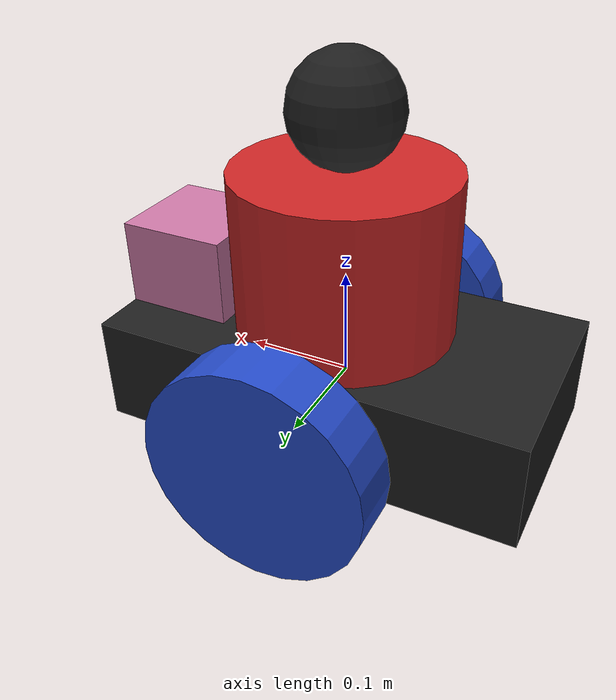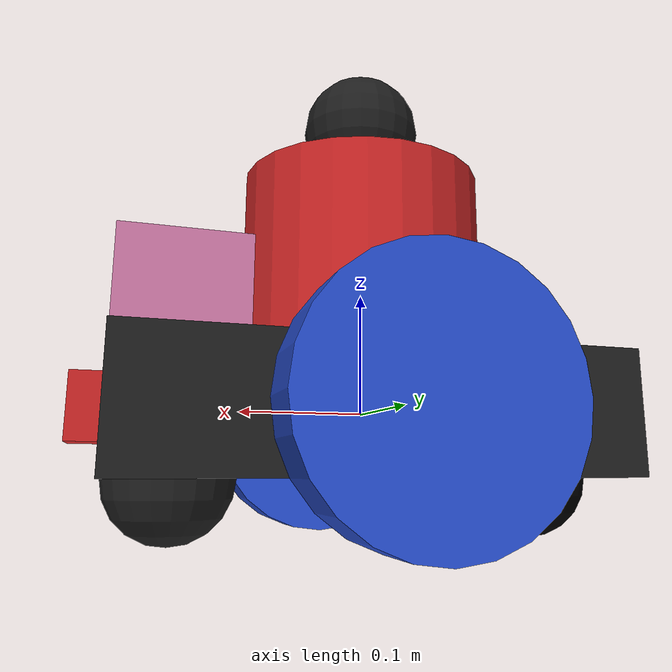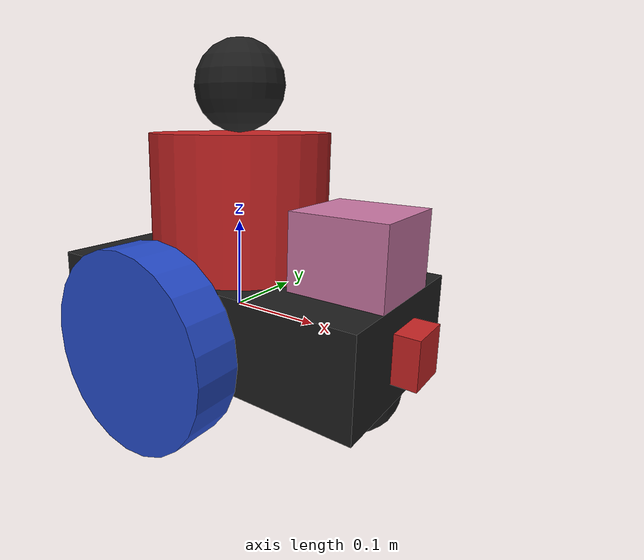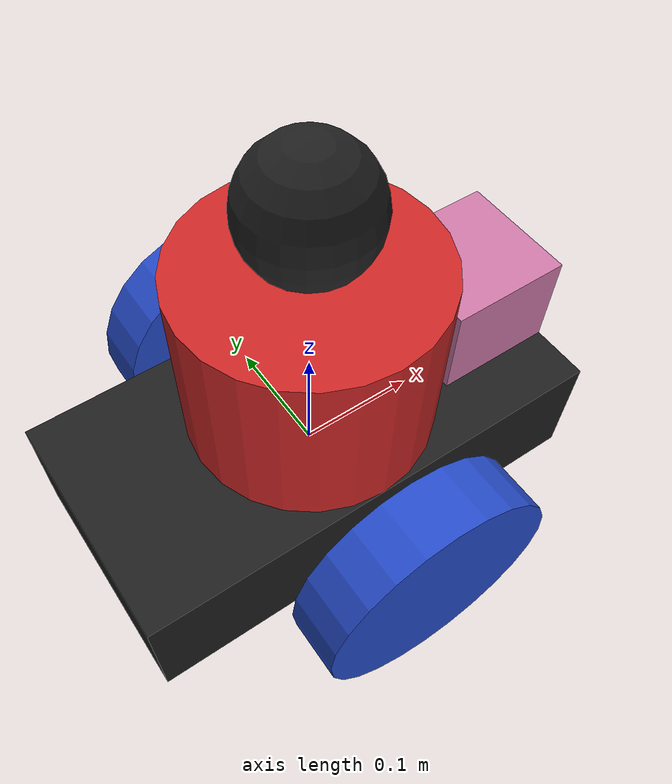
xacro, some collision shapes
<?xml version="1.0"?>
<robot name="r2" xmlns:xacro="http://ros.org/wiki/xacro">
  <xacro:include filename="$(find my_robot)/urdf/my_robot.gazebo"/>

  <link name="base">
    <visual>
      <geometry>
        <cylinder radius="0.1" length="0.2"/>
      </geometry>
    </visual>
    <collision>
      <geometry>
        <cylinder radius="0.1" length="0.2"/>
      </geometry>
    </collision>
    <inertial>
      <mass value="5"/>
      <inertia
          ixx="1.0" ixy="0" ixz="0"
          iyy="1.0" iyz="0"
          izz="1.0"/>
    </inertial>
  </link>

  <joint name="chassis_base" type="fixed">
    <parent link="chassis"/>
    <child link="base"/>
    <origin xyz="0 0 .1"/>
  </joint>

<link name="robot_footprint"></link>

  <joint name="robot_footprint_joint" type="fixed">
    <origin xyz="0 0 0" rpy="0 0 0" />
    <parent link="robot_footprint"/>
    <child link="chassis" />
  </joint>

  <link name='chassis'>
    <pose>0 0 0.1 0 0 0</pose>

    <inertial>
      <mass value="15.0"/>
      <origin xyz="0.0 0 0" rpy=" 0 0 0"/>
      <inertia
          ixx="0.1" ixy="0" ixz="0"
          iyy="0.1" iyz="0"
          izz="0.1"
      />
    </inertial>

    <collision name='collision'>
      <origin xyz="0 0 0" rpy=" 0 0 0"/>
      <geometry>
        <box size=".4 .2 .1"/>
      </geometry>
    </collision>

    <visual name='chassis_visual'>
      <origin xyz="0 0 0" rpy=" 0 0 0"/>
      <geometry>
        <box size=".4 .2 .1"/>
      </geometry>
    </visual>

    <collision name='back_caster_collision'>
      <origin xyz="-0.15 0 -0.05" rpy=" 0 0 0"/>
      <geometry>
        <sphere radius="0.0499"/>
      </geometry>
    </collision>

    <visual name='back_caster_visual'>
      <origin xyz="-0.15 0 -0.05" rpy=" 0 0 0"/>
      <geometry>
        <sphere radius="0.05"/>
      </geometry>
      <material name="black"/>
    </visual>

    <collision name='front_caster_collision'>
      <origin xyz="0.15 0 -0.05" rpy=" 0 0 0"/>
      <geometry>
        <sphere radius="0.0499"/>
      </geometry>
    </collision>

    <visual name='front_caster_visual'>
      <origin xyz="0.15 0 -0.05" rpy=" 0 0 0"/>
      <geometry>
        <sphere radius="0.05"/>
      </geometry>
    </visual>

  </link>

  <link name="left_wheel">
    <inertial>
      <mass value="5.0"/>
      <origin xyz="0 0 0" rpy="0 1.5707 1.5707"/>
      <inertia
          ixx="0.1" ixy="0" ixz="0"
          iyy="0.1" iyz="0"
          izz="0.1"
      />
    </inertial>

    <collision name='left_wheel_collision'>
      <origin xyz="0 0 0" rpy="0 1.5707 1.5707"/>
      <geometry>
        <cylinder radius="0.1" length="0.05" />
      </geometry>
    </collision>

    <visual name='left_wheel_visual'>
      <origin xyz="0 0 0" rpy="0 1.5707 1.5707"/>
      <geometry>
        <cylinder radius="0.1" length="0.05"/>
      </geometry>
    </visual>
  </link>

  <joint type="continuous" name="left_wheel_hinge">
    <origin xyz="0 0.15 0" rpy="0 0 0"/>
    <child link="left_wheel"/>
    <parent link="chassis"/>
    <axis xyz="0 1 0" rpy="0 0 0"/>
    <limit effort="10000" velocity="1000"/>
    <dynamics damping="1.0" friction="1.0"/>
  </joint>

  <link name="right_wheel">
    <inertial>
      <mass value="5.0"/>
      <origin xyz="0 0 0" rpy="0 1.5707 1.5707"/>
      <inertia
          ixx="0.1" ixy="0" ixz="0"
          iyy="0.1" iyz="0"
          izz="0.1"
      />
    </inertial>

    <collision name='right_wheel_collision'>
      <origin xyz="0 0 0" rpy="0 1.5707 1.5707"/>
      <geometry>
        <cylinder radius="0.1" length="0.05"/>
      </geometry>
    </collision>

    <visual name='right_wheel_visual'>
      <origin xyz="0 0 0" rpy="0 1.5707 1.5707"/>
      <geometry>
        <cylinder radius="0.1" length="0.05"/>
      </geometry>
    </visual>
  </link>

  <joint type="continuous" name="right_wheel_hinge">
    <origin xyz="0 -0.15 0" rpy="0 0 0"/>
    <child link="right_wheel"/>
    <parent link="chassis"/>
    <axis xyz="0 1 0" rpy="0 0 0"/>
    <limit effort="10000" velocity="1000"/>
    <dynamics damping="1.0" friction="1.0"/>
  </joint>

  <link name="camera">
    <inertial>
      <mass value="0.1"/>
      <origin xyz="0 0 0" rpy="0 0 0"/>
      <box_inertia m="0.1" x="0.05" y="0.05" z="0.05"/>
      <inertia
          ixx="1e-6" ixy="0" ixz="0"
          iyy="1e-6" iyz="0"
          izz="1e-6"
      />
    </inertial>

    <visual name='camera_visual'>
      <origin xyz="0 0 0" rpy="0 0 0"/>
      <geometry>
        <box size="0.05 0.05 0.05" />
      </geometry>
    </visual>

    <collision name='camera_collision'>
      <origin xyz="0 0 0" rpy="0 0 0"/>
      <geometry>
        <box size="0.05 0.05 0.05"/>
      </geometry>
    </collision>
  </link>

  <joint type="fixed" name="camera_joint">
    <origin xyz="0.2 0 0" rpy="0 0 0"/>
    <child link="camera"/>
    <parent link="chassis"/>
    <axis xyz="0 1 0"/>
  </joint>

  <link name="hokuyo">
    <inertial>
      <mass value="1e-5"/>
      <origin xyz="0 0 0" rpy="0 0 0"/>
      <inertia
          ixx="1e-6" ixy="0" ixz="0"
          iyy="1e-6" iyz="0"
          izz="1e-6"
      />
    </inertial>

    <visual name='hokuyo_visual'>
      <origin xyz="0 0 0" rpy="0 0 0"/>
      <geometry>
        <mesh filename="package://my_robot/meshes/hokuyo.dae"/>
      </geometry>
    </visual>

    <collision name='hokuyo_collision'>
      <origin xyz="0 0 0" rpy=" 0 0 0"/>
      <geometry>
        <box size="0.1 0.1 0.1"/>
      </geometry>
    </collision>
  </link>

  <joint type="fixed" name="hokuyo_joint">
    <origin xyz="0.15 0 0.08" rpy="0 0 0"/>
    <child link="hokuyo"/>
    <parent link="chassis"/>
    <axis xyz="0 1 0"/>
  </joint>

  <link name="head">
    <visual>
      <geometry>
        <sphere radius="0.05"/>
      </geometry>
    </visual>
    <collision>
      <geometry>
        <sphere radius="0.05"/>
      </geometry>
    </collision>
    <inertial>
      <mass value="1"/>
      <inertia
          ixx="1.0" ixy="0" ixz="0"
          iyy="1.0" iyz="0"
          izz="1.0"
      />
    </inertial>
  </link>

  <joint name="head_swivel" type="continuous">
    <parent link="base"/>
    <child link="head"/>
    <axis xyz="0 0 1"/>
    <origin xyz="0 0 0.15"/>
  </joint>

  <gazebo reference="camera">
  <material>Gazebo/Red</material>
  </gazebo>

  <gazebo reference="chassis">
  <material>Gazebo/Black</material>
  </gazebo>

  <gazebo reference="base">
  <material>Gazebo/Red</material>
  </gazebo>

  <gazebo reference="head">
  <material>Gazebo/Black</material>
  </gazebo>

  <gazebo reference="left_wheel">
  <material>Gazebo/Blue</material>
  </gazebo>

  <gazebo reference="right_wheel">
  <material>Gazebo/Blue</material>
  </gazebo>

  <material name="black">
    <color rgba="0 0 0 1"/>
  </material>

</robot>
